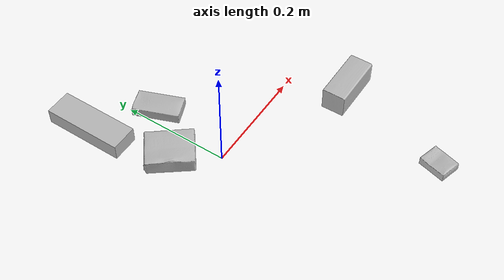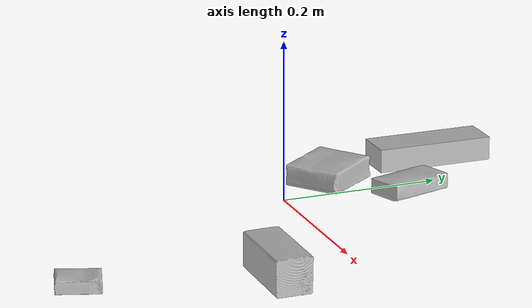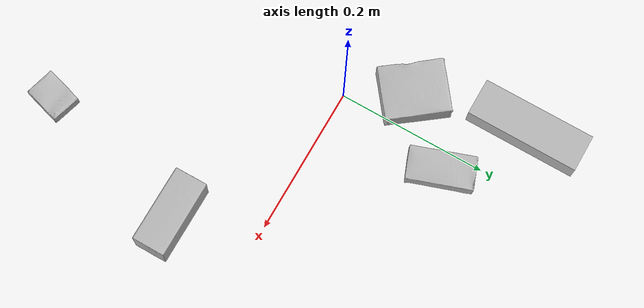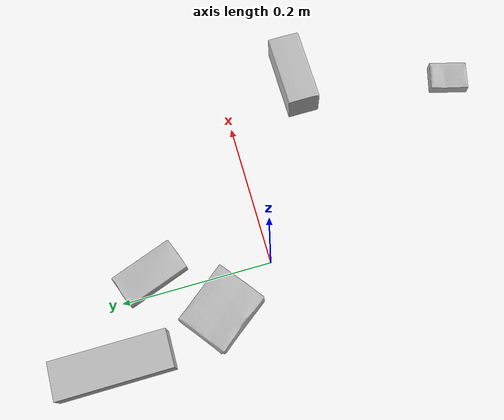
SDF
<sdf version="1.4">
  <world name="default">
    <light name="light1" type="point">
      <pose>0 0 1 0 0 0</pose>
      <diffuse>3 3 3 1</diffuse>
      <specular>3 3 3 1</specular>
    </light>
    <light name="light2" type="point">
      <pose>0 0.5 2 0 0 0</pose>
      <diffuse>1 1 1 1</diffuse>
      <specular>1 1 1 1</specular>
    </light>
    <light name="light3" type="point">
      <pose>0 0.5 2 0 0 0</pose>
      <diffuse>3 3 3 1</diffuse>
      <specular>3 3 3 1</specular>
    </light>
    <scene>
      <ambient>0.7 0.7 0.7</ambient>
    </scene>
    <model name="box1">
      <link name="link_box1">
        <collision name="default">
          <geometry>
            <mesh>
              <uri>model://sugar_box/collision_meshes/collision.obj</uri>
              <scale>0.5 0.5 0.5</scale>
            </mesh>
          </geometry>
          <surface>
            <friction>
              <ode>
                <mu>0.5</mu>
                <mu2>0.5</mu2>
              </ode>
            </friction>
          <contact>
        <ode>
            <max_vel>0</max_vel>
            <min_depth>0.0001</min_depth>
            <kp>1e8</kp>
        </ode>
    </contact></surface>
        </collision>
        <visual name="default">
          <geometry>
            <mesh>
              <uri>model://sugar_box/visual_meshes/visual.dae</uri>
              <scale>0.5 0.5 0.5</scale>
            </mesh>
          </geometry>
        </visual>
        <inertial>
          <mass>0.05016465485095978</mass>
          <pose>0.0005171863595023751 1.924554817378521e-05 -0.0001818240125430748 -0.00040462615463102695 0.0010506635220671036 0.0026153792546614123</pose>
          <inertia>
            <ixx>1.0449262e-05</ixx>
            <iyy>3.3774166e-05</iyy>
            <izz>4.0431696e-05</izz>
            <ixy>0</ixy>
            <ixz>0</ixz>
            <iyz>0</iyz>
          </inertia>
        </inertial>
      </link>
      <pose>0.02685840055346489 0.15563730895519257 0.011399302631616592 0.0007753984200107119 -0.023432532104470737 -1.227652159542242</pose>
    </model>
    <model name="box2">
      <link name="link_box2">
        <collision name="default">
          <geometry>
            <mesh>
              <uri>model://cracker_box/collision_meshes/collision.obj</uri>
              <scale>0.25 0.25 0.25</scale>
            </mesh>
          </geometry>
          <surface>
            <friction>
              <ode>
                <mu>0.5</mu>
                <mu2>0.5</mu2>
              </ode>
            </friction>
          <contact>
        <ode>
            <max_vel>0</max_vel>
            <min_depth>0.0001</min_depth>
            <kp>1e8</kp>
        </ode>
    </contact></surface>
        </collision>
        <visual name="default">
          <geometry>
            <mesh>
              <uri>model://cracker_box/visual_meshes/visual.dae</uri>
              <scale>0.25 0.25 0.25</scale>
            </mesh>
          </geometry>
        </visual>
        <inertial>
          <mass>0.05325852707028389</mass>
          <pose>0.0002366033149883151 6.358561950037256e-05 -0.0004257383698131889 -0.000316207624135088 -0.011106486806293444 0.0025467950014945295</pose>
          <inertia>
            <ixx>8.46662e-06</ixx>
            <iyy>1.3980052e-05</iyy>
            <izz>1.995082e-05</izz>
            <ixy>0</ixy>
            <ixz>0</ixz>
            <iyz>0</iyz>
          </inertia>
        </inertial>
      </link>
      <pose>0.189334899187088 -0.3187290132045746 0.009120453149080276 -0.011787901189963215 -0.0073671355005018755 -1.8494207121154531</pose>
    </model>
    <model name="box3">
      <link name="link_box3">
        <collision name="default">
          <geometry>
            <mesh>
              <uri>model://wood_block/collision_meshes/collision.obj</uri>
              <scale>0.5 0.5 0.5</scale>
            </mesh>
          </geometry>
          <surface>
            <friction>
              <ode>
                <mu>0.5</mu>
                <mu2>0.5</mu2>
              </ode>
            </friction>
          <contact>
        <ode>
            <max_vel>0</max_vel>
            <min_depth>0.0001</min_depth>
            <kp>1e8</kp>
        </ode>
    </contact></surface>
        </collision>
        <visual name="default">
          <geometry>
            <mesh>
              <uri>model://wood_block/visual_meshes/visual.dae</uri>
              <scale>0.5 0.5 0.5</scale>
            </mesh>
          </geometry>
        </visual>
        <inertial>
          <mass>0.24977724254131317</mass>
          <pose>-2.9066577553749084e-06 -0.00028540476341731846 0.00013204291462898254 -0.05220975529066727 -0.005192695547513155 -0.006861377927637377</pose>
          <inertia>
            <ixx>8.355995e-05</ixx>
            <iyy>0.00026396586</iyy>
            <izz>0.00026297852</izz>
            <ixy>0</ixy>
            <ixz>0</ixz>
            <iyz>0</iyz>
          </inertia>
        </inertial>
      </link>
      <pose>0.24818064272403717 -0.10443875193595886 0.022629264742136 -0.005208553827069626 0.005718682342735391 0.00554442240646451</pose>
    </model>
    <model name="box4">
      <link name="link_box4">
        <collision name="default">
          <geometry>
            <mesh>
              <uri>model://gelatin_box/collision_meshes/collision.obj</uri>
              <scale>1.0 1.0 1.0</scale>
            </mesh>
          </geometry>
          <surface>
            <friction>
              <ode>
                <mu>0.5</mu>
                <mu2>0.5</mu2>
              </ode>
            </friction>
          <contact>
        <ode>
            <max_vel>0</max_vel>
            <min_depth>0.0001</min_depth>
            <kp>1e8</kp>
        </ode>
    </contact></surface>
        </collision>
        <visual name="default">
          <geometry>
            <mesh>
              <uri>model://gelatin_box/visual_meshes/visual.dae</uri>
              <scale>1.0 1.0 1.0</scale>
            </mesh>
          </geometry>
        </visual>
        <inertial>
          <mass>0.142814502120018</mass>
          <pose>0.0004319618456065655 0.00011156871187267825 -0.0003640321083366871 -0.0010503719804291966 -0.004755819155973465 0.01644055947187314</pose>
          <inertia>
            <ixx>0.000100815385</ixx>
            <iyy>7.20119e-05</iyy>
            <izz>0.00015346348</izz>
            <ixy>0</ixy>
            <ixz>0</ixz>
            <iyz>0</iyz>
          </inertia>
        </inertial>
      </link>
      <pose>-0.0450446642935276 0.07736092805862427 0.015168316662311554 0.005597475697856294 -0.007304536009537727 -2.489275312627978</pose>
    </model>
    <model name="box5">
      <link name="link_box5">
        <collision name="default">
          <geometry>
            <mesh>
              <uri>model://jenga/collision_meshes/collision.obj</uri>
              <scale>1.0 1.0 1.0</scale>
            </mesh>
          </geometry>
          <surface>
            <friction>
              <ode>
                <mu>0.5</mu>
                <mu2>0.5</mu2>
              </ode>
            </friction>
          <contact>
        <ode>
            <max_vel>0</max_vel>
            <min_depth>0.0001</min_depth>
            <kp>1e8</kp>
        </ode>
    </contact></surface>
        </collision>
        <visual name="default">
          <geometry>
            <mesh>
              <uri>model://jenga/visual_meshes/visual.dae</uri>
              <scale>1.0 1.0 1.0</scale>
            </mesh>
          </geometry>
        </visual>
        <inertial>
          <mass>0.11303283274173737</mass>
          <pose>-2.502855807051674e-07 -0.00010250010382151231 -4.0923401684267446e-05 0.0 -7.342155186052628e-07 0.0</pose>
          <inertia>
            <ixx>3.127893e-05</ixx>
            <iyy>0.00021194515</iyy>
            <izz>0.00022626946</izz>
            <ixy>0</ixy>
            <ixz>0</ixz>
            <iyz>0</iyz>
          </inertia>
        </inertial>
      </link>
      <pose>-0.07511080801486969 0.22585925459861755 0.014999999664723873 8.298442328425704e-09 3.3838897207825927e-09 -1.5719408720718102</pose>
    </model>
  <physics type="ode">
      <max_contacts>50</max_contacts>
      <ode>
        <solver>
          <type>quick</type>
          <iters>75</iters>
        </solver>
        <constraints>
          <contact_max_correcting_vel>0</contact_max_correcting_vel>
          <contact_surface_layer>0</contact_surface_layer>
        </constraints>
      </ode>
    </physics></world>
</sdf>
